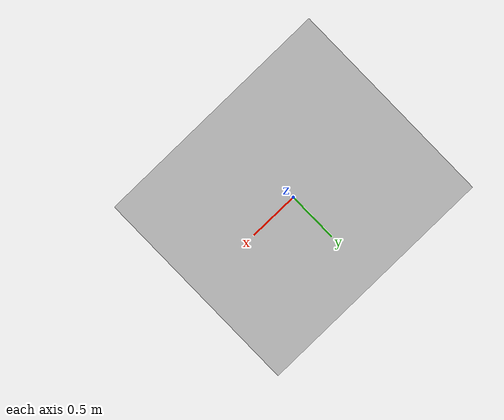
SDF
<?xml version="1.0"?>
<sdf version="1.4">
<model name="ps2_ground_plane">
  <static>true</static>
    <link name="link">
      <collision name="collision">
        <geometry>
          <plane>
            <normal>0 0 1</normal>
            <size>2.4588 2.1336</size>
          </plane>
        </geometry>
        <surface>
          <friction>
            <ode>
              <mu>100</mu>
              <mu2>50</mu2>
            </ode>
          </friction>
        </surface>
      </collision>
      <visual name="visual">
        <cast_shadows>false</cast_shadows>
        <geometry>
          <plane>
            <normal>0 0 1</normal>
            <size>2.4588 2.1336</size>
          </plane>
        </geometry>
        <material>
          <script>
            <uri>model://ps2_ground_plane/materials/scripts</uri>
            <uri>model://ps2_ground_plane/materials/textures</uri>
            <name>Ps2GroundPlane/Image</name>
          </script>
        </material>
      </visual>
    </link>
  </model>
</sdf>
